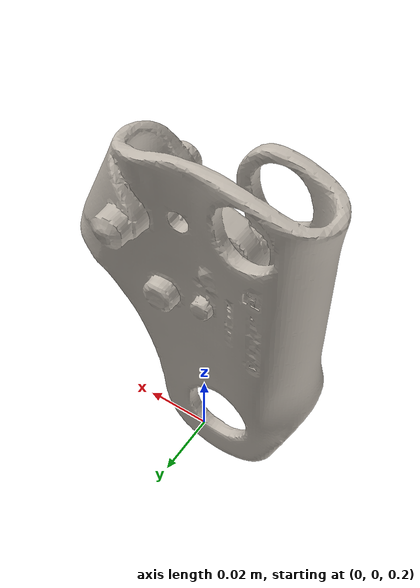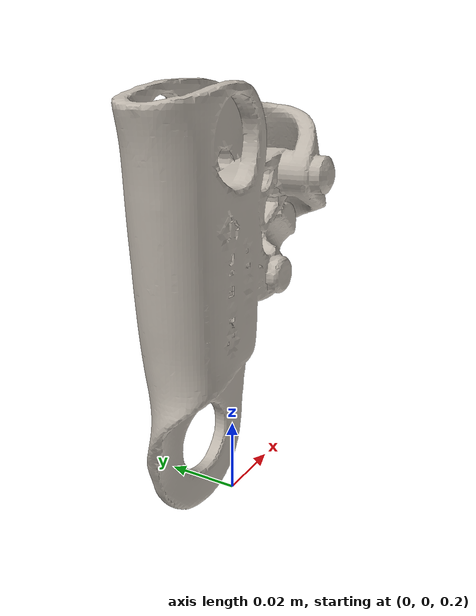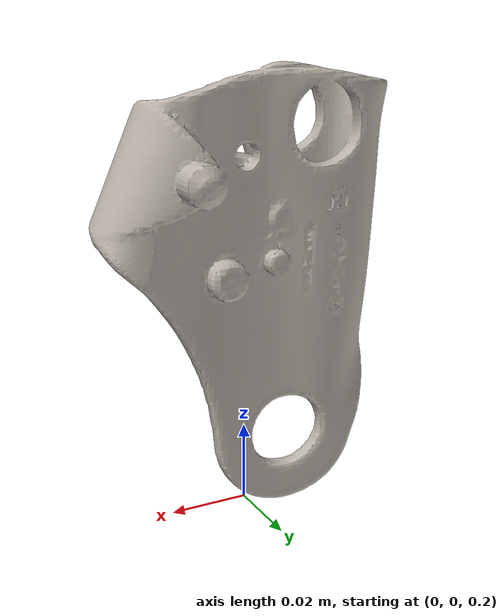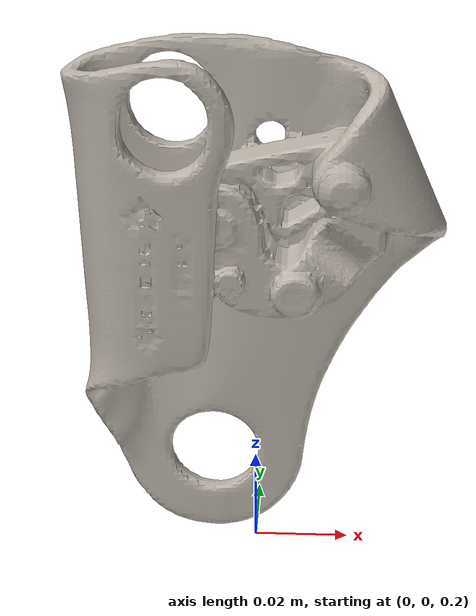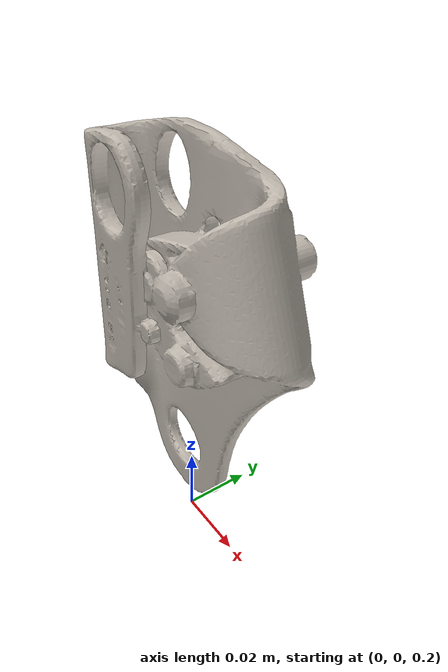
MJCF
<mujoco model="ascender">
  <compiler meshdir="." texturedir="."/>
  <asset>
    <mesh name="ascender_visual" file="meshes/ascender_visual.obj"/>
    <mesh name="ascender_collision" file="meshes/ascender_collision.obj"/>
    <texture name="ascender_basecolor" type="2d" file="meshes/ascender_basecolor.png"/>
    <material name="ascender" texture="ascender_basecolor" specular="0.6" shininess="0.5"/>
  </asset>
  <worldbody>
    <light pos="0 0 1"/>
    <body name="ascender" pos="0 0 0.2">
      <freejoint/>
      <geom type="mesh" mesh="ascender_visual" material="ascender" contype="0" conaffinity="0" group="2"/>
      <geom type="mesh" mesh="ascender_collision" mass="0.10000000149011612" group="3"/>
    </body>
  </worldbody>
</mujoco>
